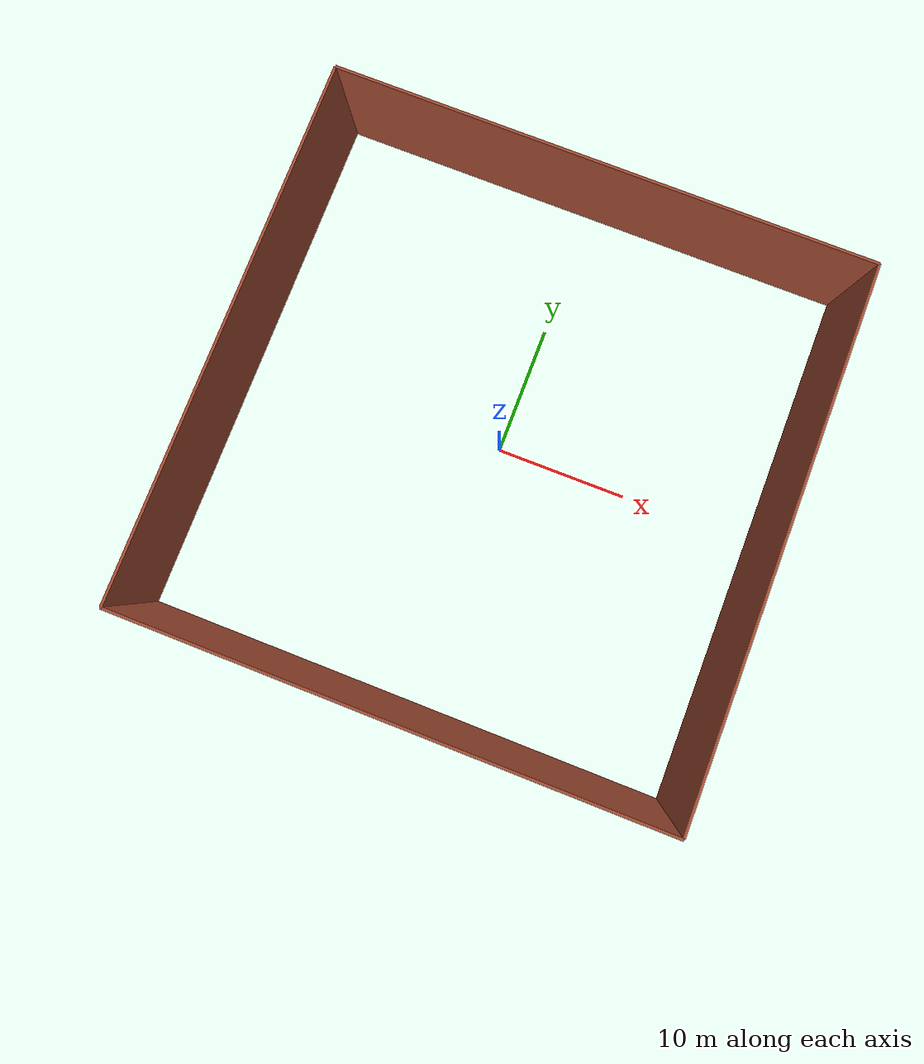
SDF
<?xml version='1.0'?>
<sdf version='1.7'>
  <model name='room'>
    <pose>0 0 0 0 -0 0</pose>
    <link name='Wall_11'>
      <collision name='Wall_11_Collision'>
        <geometry>
          <box>
            <size>40 0.2 10</size>
          </box>
        </geometry>
        <pose>0 0 5 0 -0 0</pose>
      </collision>
      <visual name='Wall_11_Visual'>
        <pose>0 0 5 0 -0 0</pose>
        <geometry>
          <box>
            <size>40 0.2 10</size>
          </box>
        </geometry>
        <material>
          <script>
            <uri>file://media/materials/scripts/gazebo.material</uri>
            <name>Gazebo/Bricks</name>
          </script>
          <ambient>1 1 1 1</ambient>
        </material>
        <meta>
          <layer>0</layer>
        </meta>
      </visual>
      <pose>20 0 0 0 -0 -1.5708</pose>
    </link>
    <link name='Wall_5'>
      <collision name='Wall_5_Collision'>
        <geometry>
          <box>
            <size>40 0.2 10</size>
          </box>
        </geometry>
        <pose>0 0 5 0 -0 0</pose>
      </collision>
      <visual name='Wall_5_Visual'>
        <pose>0 0 5 0 -0 0</pose>
        <geometry>
          <box>
            <size>40 0.2 10</size>
          </box>
        </geometry>
        <material>
          <script>
            <uri>file://media/materials/scripts/gazebo.material</uri>
            <name>Gazebo/Bricks</name>
          </script>
          <ambient>1 1 1 1</ambient>
        </material>
        <meta>
          <layer>0</layer>
        </meta>
      </visual>
      <pose>0 -20 0 0 -0 0</pose>
    </link>
    <link name='Wall_7'>
      <collision name='Wall_7_Collision'>
        <geometry>
          <box>
            <size>40 0.2 10</size>
          </box>
        </geometry>
        <pose>0 0 5 0 -0 0</pose>
      </collision>
      <visual name='Wall_7_Visual'>
        <pose>0 0 5 0 -0 0</pose>
        <geometry>
          <box>
            <size>40 0.2 10</size>
          </box>
        </geometry>
        <material>
          <script>
            <uri>file://media/materials/scripts/gazebo.material</uri>
            <name>Gazebo/Bricks</name>
          </script>
          <ambient>1 1 1 1</ambient>
        </material>
        <meta>
          <layer>0</layer>
        </meta>
      </visual>
      <pose>0 20 0 0 -0 0</pose>
    </link>
    <link name='Wall_9'>
      <collision name='Wall_9_Collision'>
        <geometry>
          <box>
            <size>40 0.2 10</size>
          </box>
        </geometry>
        <pose>0 0 5 0 -0 0</pose>
      </collision>
      <visual name='Wall_9_Visual'>
        <pose>0 0 5 0 -0 0</pose>
        <geometry>
          <box>
            <size>40 0.2 10</size>
          </box>
        </geometry>
        <material>
          <script>
            <uri>file://media/materials/scripts/gazebo.material</uri>
            <name>Gazebo/Bricks</name>
          </script>
          <ambient>1 1 1 1</ambient>
        </material>
        <meta>
          <layer>0</layer>
        </meta>
      </visual>
      <pose>-20 0 0 0 -0 -1.5708</pose>
    </link>
    <static>1</static>
  </model>
</sdf>
